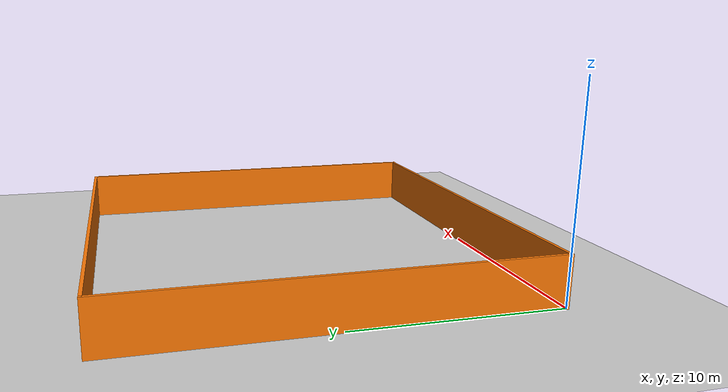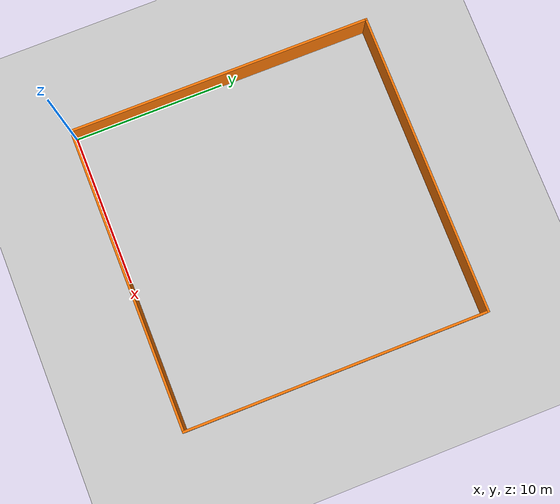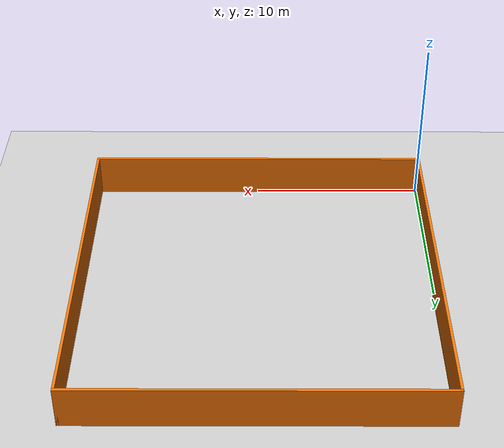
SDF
<sdf version="1.7">
 <world name="default">
  <model name="ground_plane">
   <static>1</static>
   <link name="link">
    <collision name="collision">
     <geometry><plane><normal>0 0 1</normal><size>100 100</size></plane></geometry>
     <surface>
      <contact><collide_bitmask>65535</collide_bitmask></contact>
      <friction><ode><mu>100</mu><mu2>50</mu2></ode></friction>
     </surface>
    </collision>
    <visual name="visual">
     <cast_shadows>0</cast_shadows>
     <geometry><plane><normal>0 0 1</normal><size>100 100</size></plane></geometry>
     <material>
      <script><uri>file://media/materials/scripts/gazebo.material</uri><name>Gazebo/Grey</name></script>
     </material>
    </visual>
   </link>
  </model>
  <light name="sun" type="directional">
   <cast_shadows>0</cast_shadows>
   <pose>0 0 10 0 -0 0</pose>
   <diffuse>0.8 0.8 0.8 1</diffuse>
   <specular>0.2 0.2 0.2 1</specular>
   <attenuation>
    <range>1000</range>
    <constant>0.9</constant>
    <linear>0.01</linear>
    <quadratic>0.001</quadratic>
   </attenuation>
   <direction>-0.5 0.1 -0.9</direction>
   <spot><inner_angle>0</inner_angle><outer_angle>0</outer_angle><falloff>0</falloff></spot>
  </light>
  <gravity>0 0 -9.8</gravity>
  <magnetic_field>6e-06 2.3e-05 -4.2e-05</magnetic_field>
  <atmosphere type="adiabatic"/>
  <physics type="ode">
   <max_step_size>0.005</max_step_size>
   <real_time_update_rate>1</real_time_update_rate>
  </physics>
  <scene><ambient>0.4 0.4 0.4 1</ambient><background>0.7 0.7 0.7 1</background><shadows>false</shadows></scene>
  <spherical_coordinates>
   <surface_model>EARTH_WGS84</surface_model>
   <latitude_deg>0</latitude_deg>
   <longitude_deg>0</longitude_deg>
   <elevation>0</elevation>
   <heading_deg>0</heading_deg>
  </spherical_coordinates>
  <model name="Frame">
   <pose>10 10 0 0 -0 0</pose>
   <link name="Wall_10">
    <collision name="Wall_10_Collision">
     <geometry><box><size>20.15 0.15 2.5</size></box></geometry>
     <pose>0 0 1.25 0 -0 0</pose>
    </collision>
    <visual name="Wall_10_Visual">
     <pose>0 0 1.25 0 -0 0</pose>
     <geometry><box><size>20.15 0.15 2.5</size></box></geometry>
     <material>
      <script><uri>file://media/materials/scripts/gazebo.material</uri><name>Gazebo/Grey</name></script>
      <ambient>0.996078 0.47451 0.0196078 1</ambient>
     </material>
     <meta><layer>0</layer></meta>
    </visual>
    <pose>-10 0 0 0 -0 1.5708</pose>
   </link>
   <link name="Wall_11">
    <collision name="Wall_11_Collision">
     <geometry><box><size>20.15 0.15 2.5</size></box></geometry>
     <pose>0 0 1.25 0 -0 0</pose>
    </collision>
    <visual name="Wall_11_Visual">
     <pose>0 0 1.25 0 -0 0</pose>
     <geometry><box><size>20.15 0.15 2.5</size></box></geometry>
     <material>
      <script><uri>file://media/materials/scripts/gazebo.material</uri><name>Gazebo/Grey</name></script>
      <ambient>0.996078 0.47451 0.0196078 1</ambient>
     </material>
     <meta><layer>0</layer></meta>
    </visual>
    <pose>0 10 0 0 -0 0</pose>
   </link>
   <link name="Wall_12">
    <collision name="Wall_12_Collision">
     <geometry><box><size>20.15 0.15 2.5</size></box></geometry>
     <pose>0 0 1.25 0 -0 0</pose>
    </collision>
    <visual name="Wall_12_Visual">
     <pose>0 0 1.25 0 -0 0</pose>
     <geometry><box><size>20.15 0.15 2.5</size></box></geometry>
     <material>
      <script><uri>file://media/materials/scripts/gazebo.material</uri><name>Gazebo/Grey</name></script>
      <ambient>0.996078 0.47451 0.0196078 1</ambient>
     </material>
     <meta><layer>0</layer></meta>
    </visual>
    <pose>10 0 0 0 -0 -1.5708</pose>
   </link>
   <link name="Wall_5">
    <collision name="Wall_5_Collision">
     <geometry><box><size>20.15 0.15 2.5</size></box></geometry>
     <pose>0 0 1.25 0 -0 0</pose>
    </collision>
    <visual name="Wall_5_Visual">
     <pose>0 0 1.25 0 -0 0</pose>
     <geometry><box><size>20.15 0.15 2.5</size></box></geometry>
     <material>
      <script><uri>file://media/materials/scripts/gazebo.material</uri><name>Gazebo/Grey</name></script>
      <ambient>0.996078 0.47451 0.0196078 1</ambient>
     </material>
     <meta><layer>0</layer></meta>
    </visual>
    <pose>0 -10 0 0 -0 0</pose>
   </link>
   <static>1</static>
  </model>
 </world>
</sdf>
